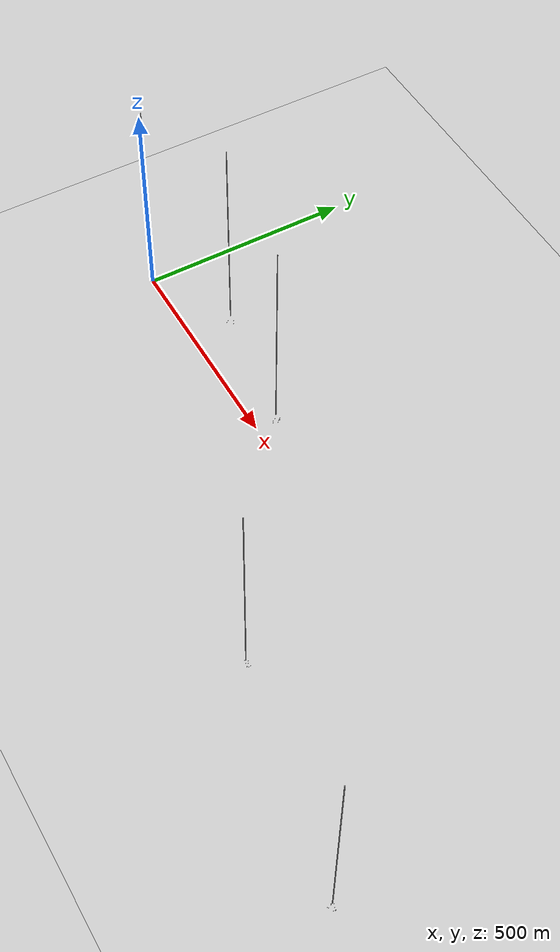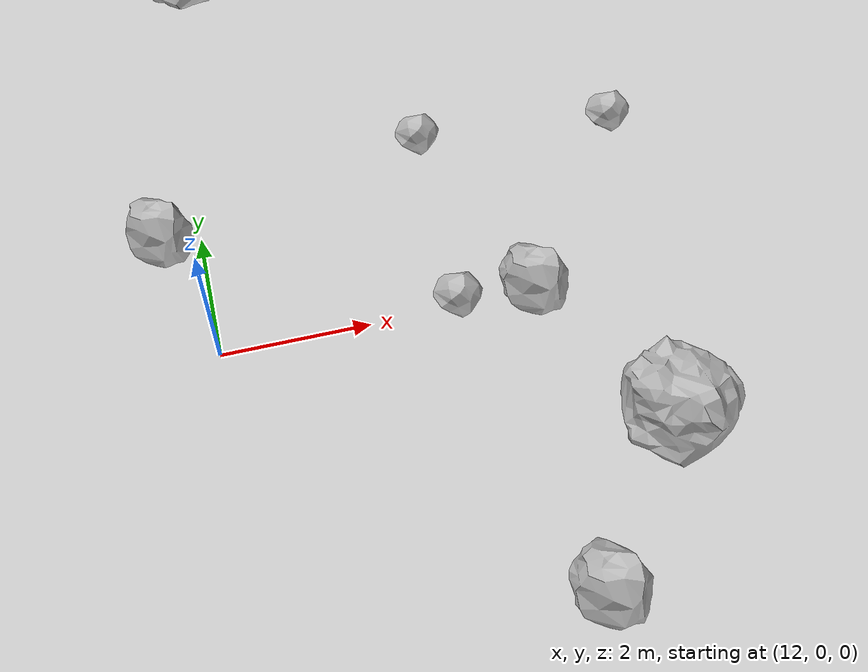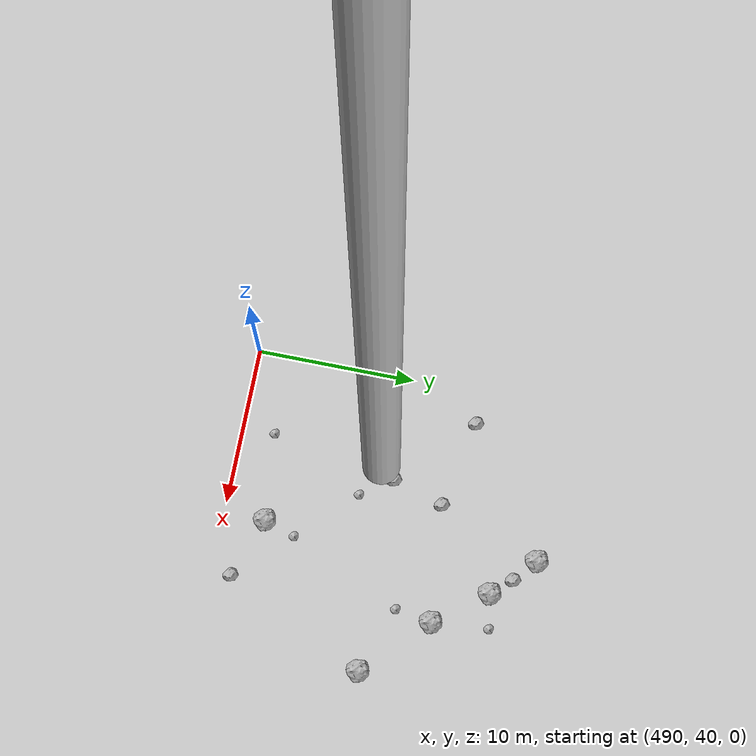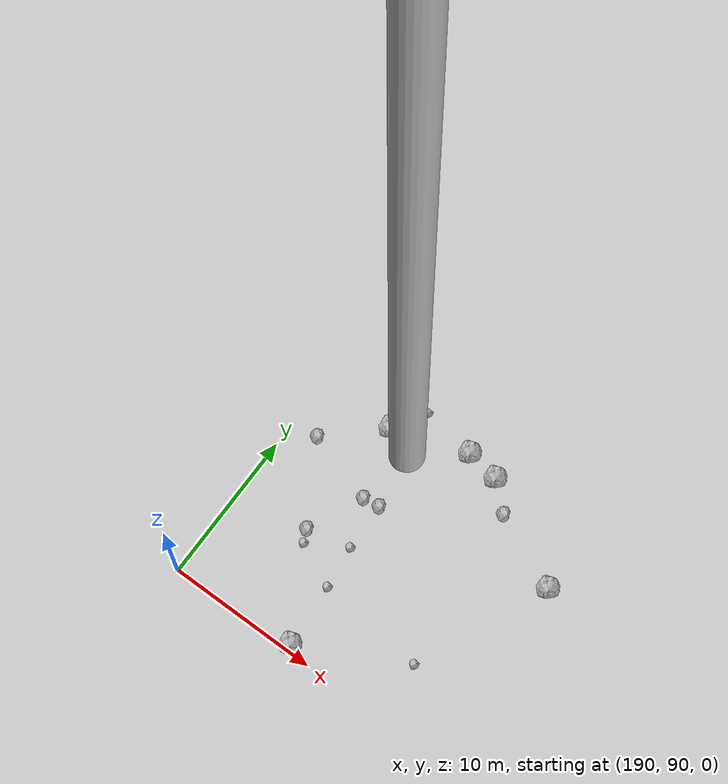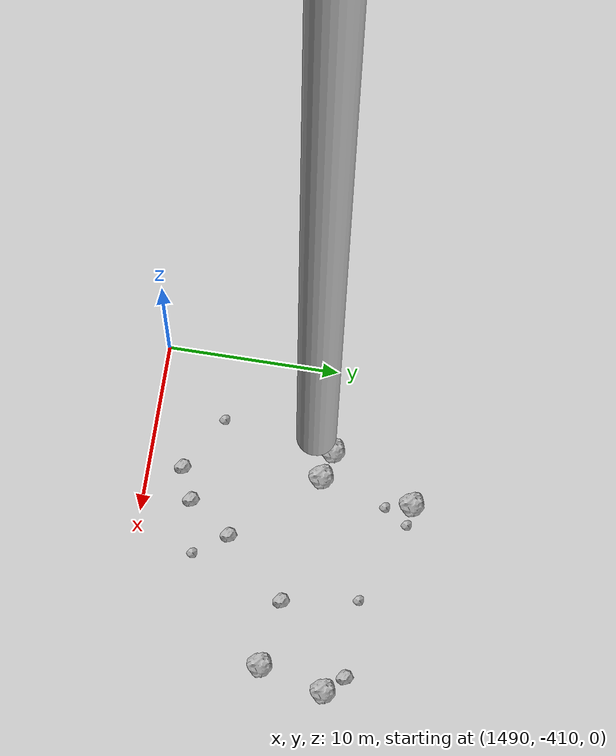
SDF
<?xml version="1.0" ?>
<sdf version="1.6">
  <world name="default">

    <include>
      <uri>model://custom_ground</uri>
    </include>

    <include>
      <uri>model://sun</uri>
    </include>

    <spherical_coordinates>
      <surface_model>EARTH_WGS84</surface_model>
      <latitude_deg>38.161479</latitude_deg>
      <longitude_deg>-122.454630</longitude_deg>
      <elevation>488.0</elevation>
      <heading_deg>90</heading_deg>
    </spherical_coordinates>

    <model name="rock1_0_0">
      <include>
        <uri>model://rock1</uri>
        <pose>12.54401455625546 7.599893578455806 0.5 0 0 0</pose>
      </include>
    </model>
    <model name="rock1_0_1">
      <include>
        <uri>model://rock1</uri>
        <pose>14.857614007119144 -7.902003803793591 0.5 0 0 0</pose>
      </include>
    </model>
    <model name="rock1_0_2">
      <include>
        <uri>model://rock1</uri>
        <pose>5.59410717641345 5.324676905601166 0.5 0 0 0</pose>
      </include>
    </model>
    <model name="rock1_0_3">
      <include>
        <uri>model://rock1</uri>
        <pose>17.36818941744225 -2.3756343832148126 0.5 0 0 0</pose>
      </include>
    </model>
    <model name="rock1_0_4">
      <include>
        <uri>model://rock1</uri>
        <pose>8.216797083354486 -6.308858190975537 0.5 0 0 0</pose>
      </include>
    </model>
    <model name="rock2_0_0">
      <include>
        <uri>model://rock2</uri>
        <pose>2.770750424663886 4.836747939784109 0.3 0 0 0</pose>
      </include>
    </model>
    <model name="rock2_0_1">
      <include>
        <uri>model://rock2</uri>
        <pose>16.256680709868213 0.0411186747414245 0.3 0 0 0</pose>
      </include>
    </model>
    <model name="rock2_0_2">
      <include>
        <uri>model://rock2</uri>
        <pose>15.789222997802295 -4.247676658457856 0.3 0 0 0</pose>
      </include>
    </model>
    <model name="rock2_0_3">
      <include>
        <uri>model://rock2</uri>
        <pose>11.475175865616622 2.087300174708414 0.3 0 0 0</pose>
      </include>
    </model>
    <model name="rock2_0_4">
      <include>
        <uri>model://rock2</uri>
        <pose>12.170663402576587 -8.85848448950214 0.3 0 0 0</pose>
      </include>
    </model>
    <model name="rock3_0_0">
      <include>
        <uri>model://rock3</uri>
        <pose>15.401723328953763 3.1313194779628635 0.2 0 0 0</pose>
      </include>
    </model>
    <model name="rock3_0_1">
      <include>
        <uri>model://rock3</uri>
        <pose>18.343447373353246 2.905325871055828 0.2 0 0 0</pose>
      </include>
    </model>
    <model name="rock3_0_2">
      <include>
        <uri>model://rock3</uri>
        <pose>15.215921433440558 0.0772953846358142 0.2 0 0 0</pose>
      </include>
    </model>
    <model name="rock3_0_3">
      <include>
        <uri>model://rock3</uri>
        <pose>9.85229853950964 8.96604373937641 0.2 0 0 0</pose>
      </include>
    </model>
    <model name="rock3_0_4">
      <include>
        <uri>model://rock3</uri>
        <pose>14.202939115905568 8.032544347112356 0.2 0 0 0</pose>
      </include>
    </model>
    <model name="rock1_1_0">
      <include>
        <uri>model://rock1</uri>
        <pose>200.1129741695573 106.68376023178709 0.5 0 0 0</pose>
      </include>
    </model>
    <model name="rock1_1_1">
      <include>
        <uri>model://rock1</uri>
        <pose>202.32881933326917 106.32885868127067 0.5 0 0 0</pose>
      </include>
    </model>
    <model name="rock1_1_2">
      <include>
        <uri>model://rock1</uri>
        <pose>198.4062127701172 90.42733073489758 0.5 0 0 0</pose>
      </include>
    </model>
    <model name="rock1_1_3">
      <include>
        <uri>model://rock1</uri>
        <pose>209.01361735773588 102.5995050372566 0.5 0 0 0</pose>
      </include>
    </model>
    <model name="rock1_1_4">
      <include>
        <uri>model://rock1</uri>
        <pose>195.1589803419082 105.04739460759599 0.5 0 0 0</pose>
      </include>
    </model>
    <model name="rock2_1_0">
      <include>
        <uri>model://rock2</uri>
        <pose>204.0289458753096 104.80270249102114 0.3 0 0 0</pose>
      </include>
    </model>
    <model name="rock2_1_1">
      <include>
        <uri>model://rock2</uri>
        <pose>194.80077726340065 96.8147860090661 0.3 0 0 0</pose>
      </include>
    </model>
    <model name="rock2_1_2">
      <include>
        <uri>model://rock2</uri>
        <pose>196.44614459601044 100.46762551867052 0.3 0 0 0</pose>
      </include>
    </model>
    <model name="rock2_1_3">
      <include>
        <uri>model://rock2</uri>
        <pose>191.7730020376067 101.93128665709423 0.3 0 0 0</pose>
      </include>
    </model>
    <model name="rock2_1_4">
      <include>
        <uri>model://rock2</uri>
        <pose>197.54859653261823 100.60809131282552 0.3 0 0 0</pose>
      </include>
    </model>
    <model name="rock3_1_0">
      <include>
        <uri>model://rock3</uri>
        <pose>198.02418338169605 94.61065161867344 0.2 0 0 0</pose>
      </include>
    </model>
    <model name="rock3_1_1">
      <include>
        <uri>model://rock3</uri>
        <pose>196.42678264104347 107.2318481346519 0.2 0 0 0</pose>
      </include>
    </model>
    <model name="rock3_1_2">
      <include>
        <uri>model://rock3</uri>
        <pose>197.666599366735 97.43846184778982 0.2 0 0 0</pose>
      </include>
    </model>
    <model name="rock3_1_3">
      <include>
        <uri>model://rock3</uri>
        <pose>205.16149171497966 93.9101679508919 0.2 0 0 0</pose>
      </include>
    </model>
    <model name="rock3_1_4">
      <include>
        <uri>model://rock3</uri>
        <pose>195.17471091215003 95.95856290198573 0.2 0 0 0</pose>
      </include>
    </model>
    <model name="rock1_2_0">
      <include>
        <uri>model://rock1</uri>
        <pose>502.5918224974716 57.25957616486576 0.5 0 0 0</pose>
      </include>
    </model>
    <model name="rock1_2_1">
      <include>
        <uri>model://rock1</uri>
        <pose>500.74687200960176 42.60856460303547 0.5 0 0 0</pose>
      </include>
    </model>
    <model name="rock1_2_2">
      <include>
        <uri>model://rock1</uri>
        <pose>508.8675609203994 50.184447661662404 0.5 0 0 0</pose>
      </include>
    </model>
    <model name="rock1_2_3">
      <include>
        <uri>model://rock1</uri>
        <pose>500.0236264889472 59.75778463285806 0.5 0 0 0</pose>
      </include>
    </model>
    <model name="rock1_2_4">
      <include>
        <uri>model://rock1</uri>
        <pose>505.05009994413365 54.01649415362993 0.5 0 0 0</pose>
      </include>
    </model>
    <model name="rock2_2_0">
      <include>
        <uri>model://rock2</uri>
        <pose>496.5926383096339 50.05862942226361 0.3 0 0 0</pose>
      </include>
    </model>
    <model name="rock2_2_1">
      <include>
        <uri>model://rock2</uri>
        <pose>504.497305182814 41.241880465310274 0.3 0 0 0</pose>
      </include>
    </model>
    <model name="rock2_2_2">
      <include>
        <uri>model://rock2</uri>
        <pose>492.0278449137178 54.4433220291274 0.3 0 0 0</pose>
      </include>
    </model>
    <model name="rock2_2_3">
      <include>
        <uri>model://rock2</uri>
        <pose>497.57982042669187 53.30351429427557 0.3 0 0 0</pose>
      </include>
    </model>
    <model name="rock2_2_4">
      <include>
        <uri>model://rock2</uri>
        <pose>501.4120189127058 58.55284835421983 0.3 0 0 0</pose>
      </include>
    </model>
    <model name="rock3_2_0">
      <include>
        <uri>model://rock3</uri>
        <pose>504.604210876249 51.691725913376644 0.2 0 0 0</pose>
      </include>
    </model>
    <model name="rock3_2_1">
      <include>
        <uri>model://rock3</uri>
        <pose>495.1158129178054 42.036232915752095 0.2 0 0 0</pose>
      </include>
    </model>
    <model name="rock3_2_2">
      <include>
        <uri>model://rock3</uri>
        <pose>504.69693183675696 57.60161024800047 0.2 0 0 0</pose>
      </include>
    </model>
    <model name="rock3_2_3">
      <include>
        <uri>model://rock3</uri>
        <pose>497.9332593605748 48.04786232713617 0.2 0 0 0</pose>
      </include>
    </model>
    <model name="rock3_2_4">
      <include>
        <uri>model://rock3</uri>
        <pose>501.32861629717115 44.56660960431033 0.2 0 0 0</pose>
      </include>
    </model>
    <model name="rock1_3_0">
      <include>
        <uri>model://rock1</uri>
        <pose>1004.5071708877118 -300.4478806514927 0.5 0 0 0</pose>
      </include>
    </model>
    <model name="rock1_3_1">
      <include>
        <uri>model://rock1</uri>
        <pose>1006.8841920387162 -293.4538140970447 0.5 0 0 0</pose>
      </include>
    </model>
    <model name="rock1_3_2">
      <include>
        <uri>model://rock1</uri>
        <pose>999.4082029017418 -294.13974544722254 0.5 0 0 0</pose>
      </include>
    </model>
    <model name="rock1_3_3">
      <include>
        <uri>model://rock1</uri>
        <pose>1007.7819256593718 -297.7632782151574 0.5 0 0 0</pose>
      </include>
    </model>
    <model name="rock1_3_4">
      <include>
        <uri>model://rock1</uri>
        <pose>995.3474997816816 -292.33773804240326 0.5 0 0 0</pose>
      </include>
    </model>
    <model name="rock2_3_0">
      <include>
        <uri>model://rock2</uri>
        <pose>994.3980337424972 -301.973802774642 0.3 0 0 0</pose>
      </include>
    </model>
    <model name="rock2_3_1">
      <include>
        <uri>model://rock2</uri>
        <pose>990.3249699410079 -297.6939958324967 0.3 0 0 0</pose>
      </include>
    </model>
    <model name="rock2_3_2">
      <include>
        <uri>model://rock2</uri>
        <pose>1006.6765067001584 -297.62912183798994 0.3 0 0 0</pose>
      </include>
    </model>
    <model name="rock2_3_3">
      <include>
        <uri>model://rock2</uri>
        <pose>997.1537843189963 -298.7958294673776 0.3 0 0 0</pose>
      </include>
    </model>
    <model name="rock2_3_4">
      <include>
        <uri>model://rock2</uri>
        <pose>1005.6413047528021 -300.468049658046 0.3 0 0 0</pose>
      </include>
    </model>
    <model name="rock3_3_0">
      <include>
        <uri>model://rock3</uri>
        <pose>1007.0875762437768 -304.9777922195202 0.2 0 0 0</pose>
      </include>
    </model>
    <model name="rock3_3_1">
      <include>
        <uri>model://rock3</uri>
        <pose>997.7587968656741 -302.19839453090674 0.2 0 0 0</pose>
      </include>
    </model>
    <model name="rock3_3_2">
      <include>
        <uri>model://rock3</uri>
        <pose>992.7320132862371 -304.03654739529065 0.2 0 0 0</pose>
      </include>
    </model>
    <model name="rock3_3_3">
      <include>
        <uri>model://rock3</uri>
        <pose>1006.4884465509658 -293.1471163881958 0.2 0 0 0</pose>
      </include>
    </model>
    <model name="rock3_3_4">
      <include>
        <uri>model://rock3</uri>
        <pose>1004.7612844071596 -292.4895746682563 0.2 0 0 0</pose>
      </include>
    </model>
    <model name="rock1_4_0">
      <include>
        <uri>model://rock1</uri>
        <pose>1507.9873959729903 -401.78127461838847 0.5 0 0 0</pose>
      </include>
    </model>
    <model name="rock1_4_1">
      <include>
        <uri>model://rock1</uri>
        <pose>1494.923726361812 -399.6028492720842 0.5 0 0 0</pose>
      </include>
    </model>
    <model name="rock1_4_2">
      <include>
        <uri>model://rock1</uri>
        <pose>1508.913318221444 -398.03522445361943 0.5 0 0 0</pose>
      </include>
    </model>
    <model name="rock1_4_3">
      <include>
        <uri>model://rock1</uri>
        <pose>1497.398104563059 -394.63677236980305 0.5 0 0 0</pose>
      </include>
    </model>
    <model name="rock1_4_4">
      <include>
        <uri>model://rock1</uri>
        <pose>1496.5711196003713 -400.0178591855993 0.5 0 0 0</pose>
      </include>
    </model>
    <model name="rock2_4_0">
      <include>
        <uri>model://rock2</uri>
        <pose>1504.0632696357611 -401.147792048993 0.3 0 0 0</pose>
      </include>
    </model>
    <model name="rock2_4_1">
      <include>
        <uri>model://rock2</uri>
        <pose>1507.8802433482754 -396.91423045193943 0.3 0 0 0</pose>
      </include>
    </model>
    <model name="rock2_4_2">
      <include>
        <uri>model://rock2</uri>
        <pose>1500.723203698159 -404.7253435060086 0.3 0 0 0</pose>
      </include>
    </model>
    <model name="rock2_4_3">
      <include>
        <uri>model://rock2</uri>
        <pose>1498.9734595173968 -407.20544335765 0.3 0 0 0</pose>
      </include>
    </model>
    <model name="rock2_4_4">
      <include>
        <uri>model://rock2</uri>
        <pose>1497.1174575289713 -408.00137281989345 0.3 0 0 0</pose>
      </include>
    </model>
    <model name="rock3_4_0">
      <include>
        <uri>model://rock3</uri>
        <pose>1498.535493043132 -394.7660895961896 0.2 0 0 0</pose>
      </include>
    </model>
    <model name="rock3_4_1">
      <include>
        <uri>model://rock3</uri>
        <pose>1497.680000269519 -396.1416818492161 0.2 0 0 0</pose>
      </include>
    </model>
    <model name="rock3_4_2">
      <include>
        <uri>model://rock3</uri>
        <pose>1503.334987291803 -396.8273253694093 0.2 0 0 0</pose>
      </include>
    </model>
    <model name="rock3_4_3">
      <include>
        <uri>model://rock3</uri>
        <pose>1502.0546279899079 -406.65485119618575 0.2 0 0 0</pose>
      </include>
    </model>
    <model name="rock3_4_4">
      <include>
        <uri>model://rock3</uri>
        <pose>1493.909929693554 -406.0800748594849 0.2 0 0 0</pose>
      </include>
    </model>

    <model name="cylinder_1">
      <static>true</static>
      <link name="link">
        <visual name="visual">
          <geometry>
            <cylinder>
              <radius>1</radius>
              <length>500</length>
            </cylinder>
          </geometry>
        </visual>
      </link>
      <pose>10 0 270 0 0 0</pose>
    </model>

    <model name="cylinder_2">
      <static>true</static>
      <link name="link">
        <visual name="visual">
          <geometry>
            <cylinder>
              <radius>1</radius>
              <length>500</length>
            </cylinder>
          </geometry>
        </visual>
      </link>
      <pose>200 100 270 0 0 0</pose>
    </model>

    <model name="cylinder_3">
      <static>true</static>
      <link name="link">
        <visual name="visual">
          <geometry>
            <cylinder>
              <radius>1</radius>
              <length>500</length>
            </cylinder>
          </geometry>
        </visual>
      </link>
      <pose>500 50 270 0 0 0</pose>
    </model>

    <model name="cylinder_4">
      <static>true</static>
      <link name="link">
        <visual name="visual">
          <geometry>
            <cylinder>
              <radius>1</radius>
              <length>500</length>
            </cylinder>
          </geometry>
        </visual>
      </link>
      <pose>1000 -300 270 0 0 0</pose>
    </model>

    <model name="cylinder_5">
      <static>true</static>
      <link name="link">
        <visual name="visual">
          <geometry>
            <cylinder>
              <radius>1</radius>
              <length>500</length>
            </cylinder>
          </geometry>
        </visual>
      </link>
      <pose>1500 -400 270 0 0 0</pose>
    </model>

  </world>
</sdf>

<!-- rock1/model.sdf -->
<sdf version="1.6">
  <model name="rock1">
    <static>true</static> <!-- Set to true if the model should not move -->
    <pose>0 0 0 0 0 0</pose>

    <!--z offset is 0.5 for full scale-->

    <link name="link">
      <collision name="rock1_collision">
        <geometry>
          <mesh>
            <uri>model://meshes/rock1.dae</uri>
          </mesh>
        </geometry>
      </collision>
      <visual name="rock1_visual">
        <geometry>
          <mesh>
            <uri>model://meshes/rock1.dae</uri>
          </mesh>
        </geometry>
        <material>
          <script>
            <uri>model://materials/scripts/sand_pebbles.material</uri>
            <name>custom_ground/Image</name>
          </script>
        </material>
      </visual>
    </link>
  </model>
</sdf>

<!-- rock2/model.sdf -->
<sdf version="1.6">
  <model name="rock2">
    <static>true</static> <!-- Set to true if the model should not move -->
    <pose>0 0 0 0 0 0</pose>

    <!--z offset is 0.3 for full scale-->

    <link name="link">
      <collision name="rock2_collision">
        <geometry>
          <mesh>
            <uri>model://meshes/rock2.dae</uri>
          </mesh>
        </geometry>
      </collision>
      <visual name="rock2_visual">
        <geometry>
          <mesh>
            <uri>model://meshes/rock2.dae</uri>
          </mesh>
        </geometry>
        <material>
          <script>
            <uri>model://materials/scripts/sand_pebbles.material</uri>
            <name>custom_ground/Image</name>
          </script>
        </material>
      </visual>
    </link>
  </model>
</sdf>

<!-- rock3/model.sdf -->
<sdf version="1.6">
  <model name="rock3">
    <static>true</static> <!-- Set to true if the model should not move -->
    <pose>0 0 0 0 0 0</pose>

    <!--z offset is 0.2 for full scale-->

    <link name="link">
      <collision name="rock3_collision">
        <geometry>
          <mesh>
            <uri>model://meshes/rock3.dae</uri>
          </mesh>
        </geometry>
      </collision>
      <visual name="rock3_visual">
        <geometry>
          <mesh>
            <uri>model://meshes/rock3.dae</uri>
          </mesh>
        </geometry>
        <material>
          <script>
            <uri>model://materials/scripts/sand_pebbles.material</uri>
            <name>custom_ground/Image</name>
          </script>
        </material>
      </visual>
    </link>
  </model>
</sdf>

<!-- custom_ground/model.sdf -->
<sdf version="1.6">
  <model name="custom_ground">
    <static>true</static> <!-- Ground is static and immovable -->
    <link name="ground_link">
      <pose>240 0 0 0 0 0</pose> <!-- Position and orientation relative to the world -->
      <!-- Visual Representation -->
      <visual name="ground_visual">
        <geometry>
          <plane>
            <normal>0 0 1</normal> <!-- Upward facing plane -->
            <size>500 500</size> <!-- Size of the plane -->
          </plane>
        </geometry>
        <material>
          <script>
            <uri>model://materials/scripts/sand_pebbles.material</uri>
            <name>custom_ground/Image</name>
          </script>
        </material>
      </visual>

      <!-- Collision Representation -->
      <collision name="ground_collision">
        <geometry>
          <plane>
            <normal>0 0 1</normal>
            <size>100 100</size>
          </plane>
        </geometry>
      </collision>

    </link>
  </model>
</sdf>
